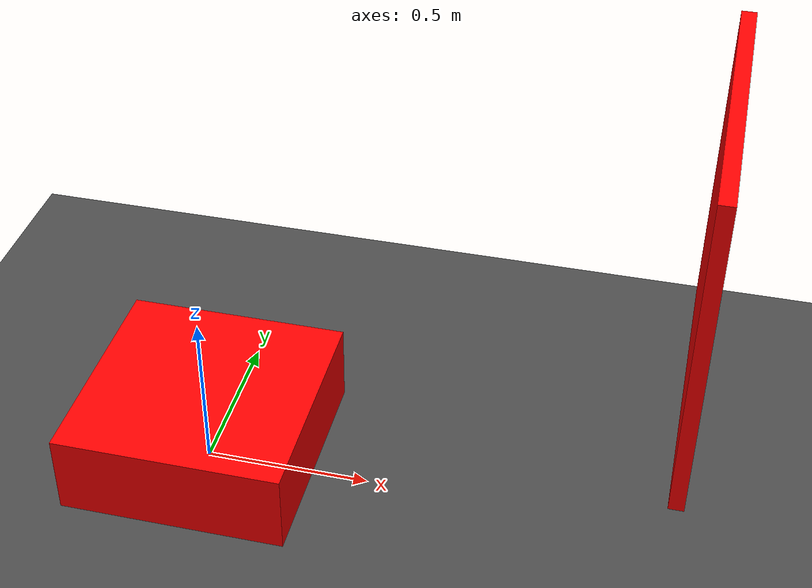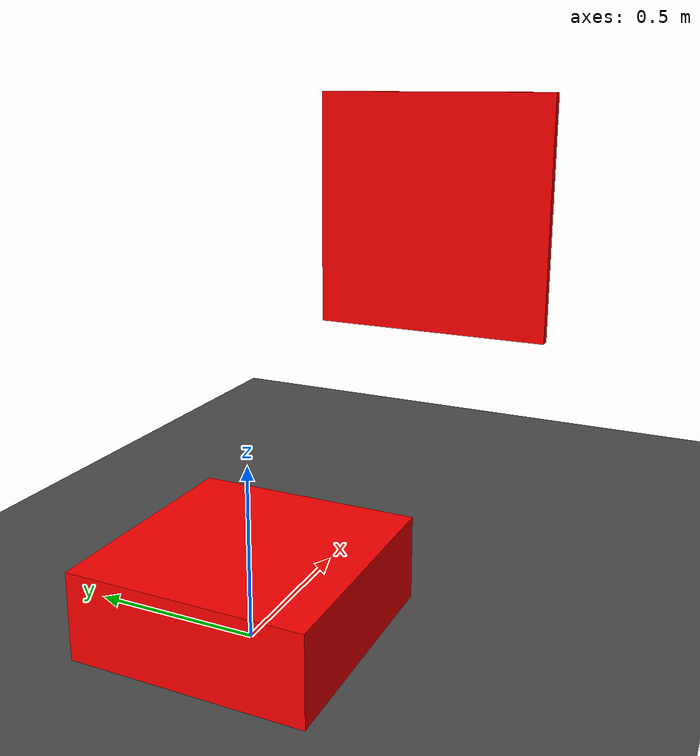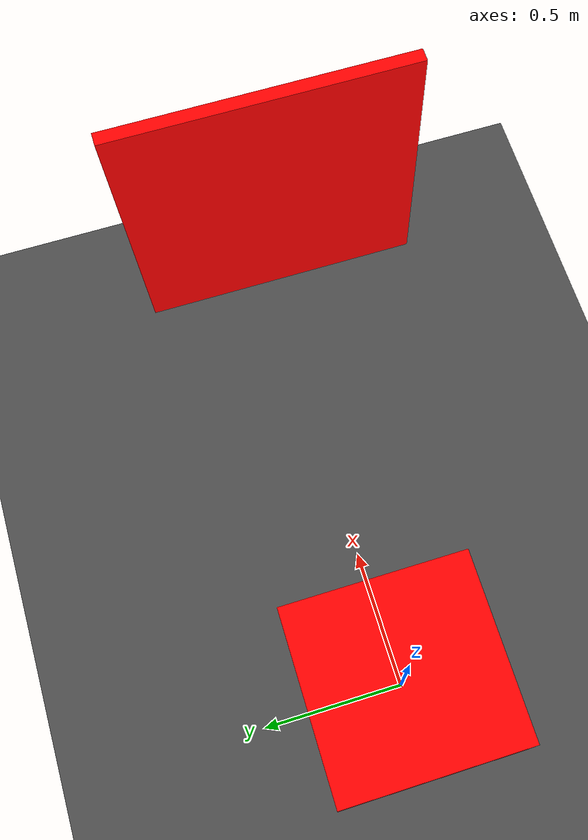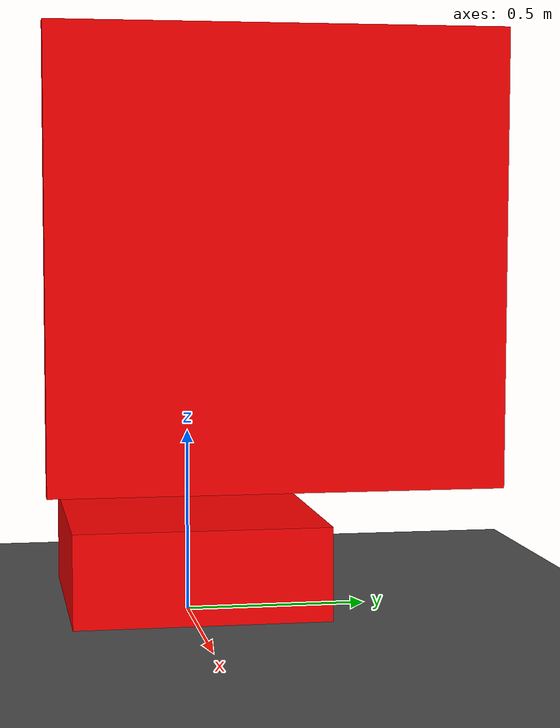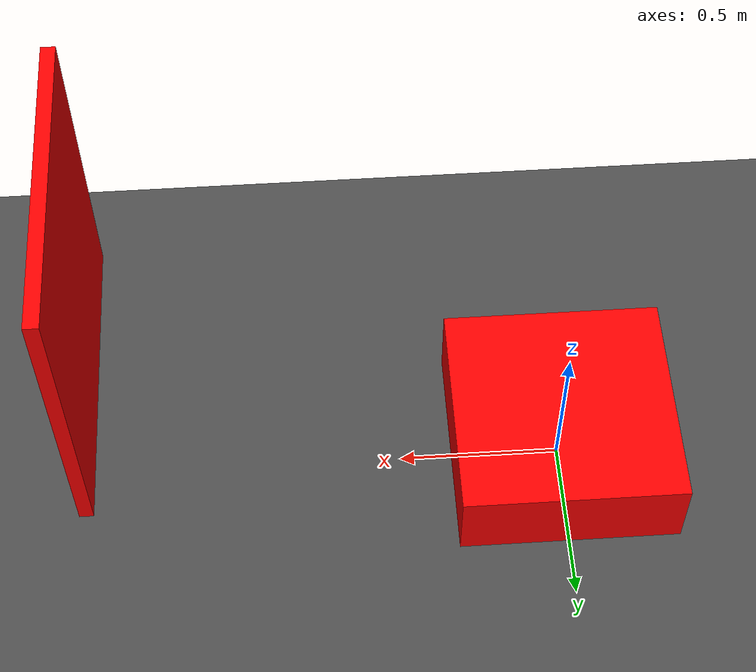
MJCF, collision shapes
<mujoco model="Palletrone">
  <include file="Palletrone.xml"/>
  <include file="palm.xml"/>

  <visual>
    <headlight diffuse="0.9 0.9 0.9" ambient="0.1 0.1 0.1" specular="0 0 0"/>
    <rgba haze="0.3 0.3 0.3 1"/>
    <global azimuth="45" elevation="35.264" ellipsoidinertia="false"/>
  </visual>

  <asset>
    <texture type="skybox" builtin="gradient" rgb1="0.5 0.5 0.5" rgb2="0 0 0" width="512" height="3072"/>
    <texture type="2d" name="groundplane" builtin="checker" mark="edge" rgb1="0.4 0.4 0.4" rgb2="0.2 0.2 0.2"
      markrgb="0.3 0.3 0.3" width="100" height="100"/>
    <material name="groundplane" texture="groundplane" texuniform="true" texrepeat="2 2" reflectance="0"/>
  </asset>

  <worldbody>
    <light pos="0 0 10" dir="0 0 -1" directional="true"/>
    <geom name="floor" size="0 0 0.05" type="plane" material="groundplane" contype="1" conaffinity="1"/>
  </worldbody>
</mujoco>

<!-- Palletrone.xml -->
<mujoco model="Palletrone">
  <compiler angle="radian"/>

  <asset>
    <mesh name="body_mesh"       file="BODY.stl"/>
    <mesh name="servo_prop_mesh" file="PROP.stl"/>
  </asset>

  <worldbody>
    <body name="base" pos="0 0 0.145">
      <freejoint name="root"/>
      <inertial pos="0 0 0" quat="1 0 0 0" mass="4.00" diaginertia="0.360702 0.360702 0.660702"/>
      <geom name="base_vis" type="mesh" mesh="body_mesh" rgba="0.1 0.1 0.1 1" contype="0" conaffinity="0"/>
      <geom name="base_col" type="box" size="0.34 0.34 0.125" pos="0 0 0.01"
            rgba="1 0 0 0.25" contype="1" conaffinity="1" condim="6"
            friction="5.0 0.1 0.1"
            solref="-2000 -40"
            solimp="0.99 0.999 0.0001"
            margin="0.002"
            group="5"/>

      <site name="imu" pos="0 0 0" quat="1 0 0 0"/>

      <body name="servo1" pos="0.148492 0.148492 0.145" quat="0.9238795 0 0 0.3826834">
        <joint name="j_servo1" type="hinge" axis="1 0 0" pos="0 0 -0.075" limited="true" range="-1.5708 1.5708" damping="0.01" armature="0.01"/>
        <body name="prop1_body" pos="0 0 -0.075">
          <geom name="servo1_vis" type="mesh" mesh="servo_prop_mesh" mass="1e-9"
                quat="0.7071068 0 0 0.7071068"
                rgba="0.85 0.55 0.0 1" contype="0" conaffinity="0" group="1"/>
          <site name="prop1_site" pos="0 0 0" size="0.01" type="sphere"/>
        </body>
      </body>

      <body name="servo2" pos="-0.148492 0.148492 0.145" quat="0.3826834 0 0 0.9238795">
        <joint name="j_servo2" type="hinge" axis="1 0 0" pos="0 0 -0.075" limited="true" range="-1.5708 1.5708" damping="0.01" armature="0.01"/>
        <body name="prop2_body" pos="0 0 -0.075">
          <geom name="servo2_vis" type="mesh" mesh="servo_prop_mesh" mass="1e-9"
                quat="0.7071068 0 0 0.7071068"
                rgba="0.85 0.55 0.0 1" contype="0" conaffinity="0" group="2"/>
          <site name="prop2_site" pos="0 0 0" size="0.01" type="sphere"/>
        </body>
      </body>

      <body name="servo3" pos="-0.148492 -0.148492 0.145" quat="0.3826834 0 0 -0.9238795">
        <joint name="j_servo3" type="hinge" axis="1 0 0" pos="0 0 -0.075" limited="true" range="-1.5708 1.5708" damping="0.01" armature="0.01"/>
        <body name="prop3_body" pos="0 0 -0.075">
          <geom name="servo3_vis" type="mesh" mesh="servo_prop_mesh" mass="1e-9"
                quat="0.7071068 0 0 0.7071068"
                rgba="0.85 0.55 0.0 1" contype="0" conaffinity="0" group="3"/>
          <site name="prop3_site" pos="0 0 0" size="0.01" type="sphere"/>
        </body>
      </body>

      <body name="servo4" pos="0.148492 -0.148492 0.145" quat="0.9238795 0 0 -0.3826834">
        <joint name="j_servo4" type="hinge" axis="1 0 0" pos="0 0 -0.075" limited="true" range="-1.5708 1.5708" damping="0.01" armature="0.01"/>
        <body name="prop4_body" pos="0 0 -0.075">
          <geom name="servo4_vis" type="mesh" mesh="servo_prop_mesh" mass="1e-9"
                quat="0.7071068 0 0 0.7071068"
                rgba="0.85 0.55 0.0 1" contype="0" conaffinity="0" group="4"/>
          <site name="prop4_site" pos="0 0 0" size="0.01" type="sphere"/>
        </body>
      </body>
    </body>
  </worldbody>

  <actuator>
    <general name="BLDC1" site="prop1_site" gear="0 0 1 0 0  0.02"  ctrlrange="0 50"/>
    <general name="BLDC2" site="prop2_site" gear="0 0 1 0 0 -0.02"  ctrlrange="0 50"/>
    <general name="BLDC3" site="prop3_site" gear="0 0 1 0 0  0.02"  ctrlrange="0 50"/>
    <general name="BLDC4" site="prop4_site" gear="0 0 1 0 0 -0.02"  ctrlrange="0 50"/>

    <position name="servo1_pos" joint="j_servo1" kp="20" kv="2.0" ctrlrange="-1.5708 1.5708"/>
    <position name="servo2_pos" joint="j_servo2" kp="20" kv="2.0" ctrlrange="-1.5708 1.5708"/>
    <position name="servo3_pos" joint="j_servo3" kp="20" kv="2.0" ctrlrange="-1.5708 1.5708"/>
    <position name="servo4_pos" joint="j_servo4" kp="20" kv="2.0" ctrlrange="-1.5708 1.5708"/>
  </actuator>

  <sensor>
    <framequat   name="body_quat"   objtype="site" objname="imu"/>
    <gyro        name="body_gyro"   site="imu"/>
    <framepos    name="base_pos"    objtype="body" objname="base"/>
    <framelinvel name="base_linvel" objtype="body" objname="base"/>

    <jointpos name="servo1_angle" joint="j_servo1"/>
    <jointpos name="servo2_angle" joint="j_servo2"/>
    <jointpos name="servo3_angle" joint="j_servo3"/>
    <jointpos name="servo4_angle" joint="j_servo4"/>
  </sensor>
</mujoco>

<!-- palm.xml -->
<mujoco model="palm">
  <worldbody>
    <body name="hand_palm" mocap="true" pos="1.4 0 1.0" quat="1 0 0 0">
      <geom
        name="hand_palm_vis"
        type="box"
        size="0.02 0.45 0.45"
        mass="0"
        rgba="0.85 0.72 0.58 0.7"
        contype="0"
        conaffinity="0"/>
      <geom
        name="hand_palm_col"
        type="box"
        size="0.02 0.45 0.45"
        mass="0"
        rgba="1 0 0 0.25"
        contype="1"
        conaffinity="1"
        condim="6"
        friction="1.2 0.03 0.01"
        solref="-800 -80"
        solimp="0.9 0.96 0.002"
        margin="0.005"
        group="5"/>
    </body>
  </worldbody>
</mujoco>
